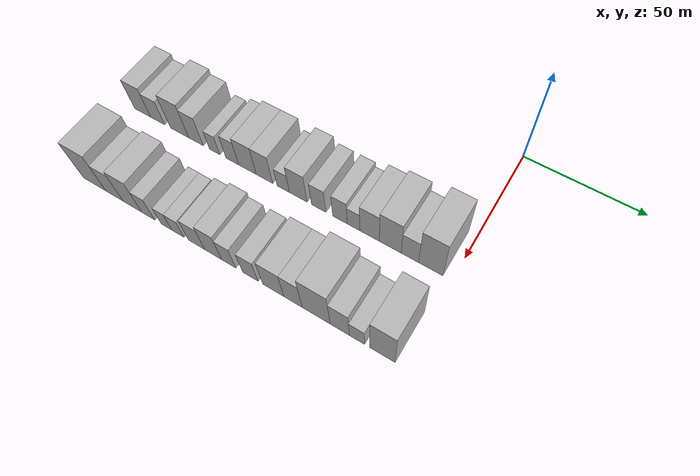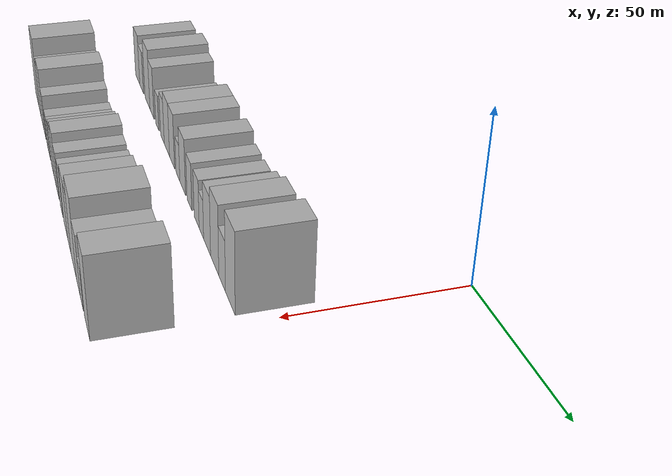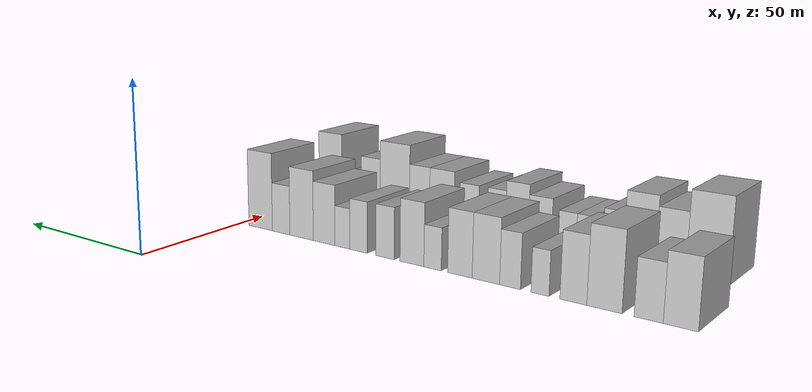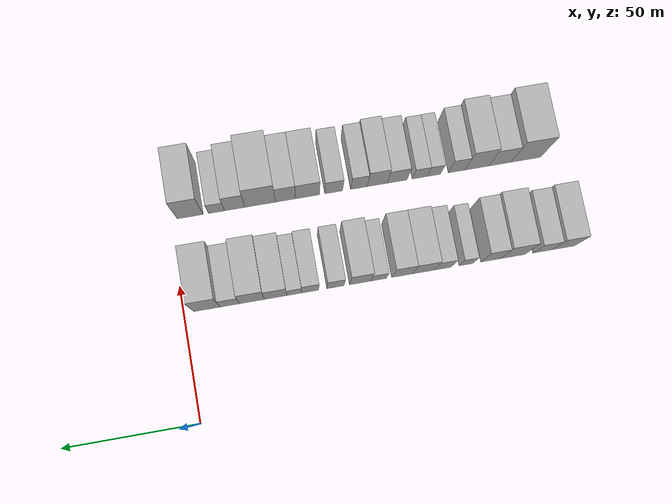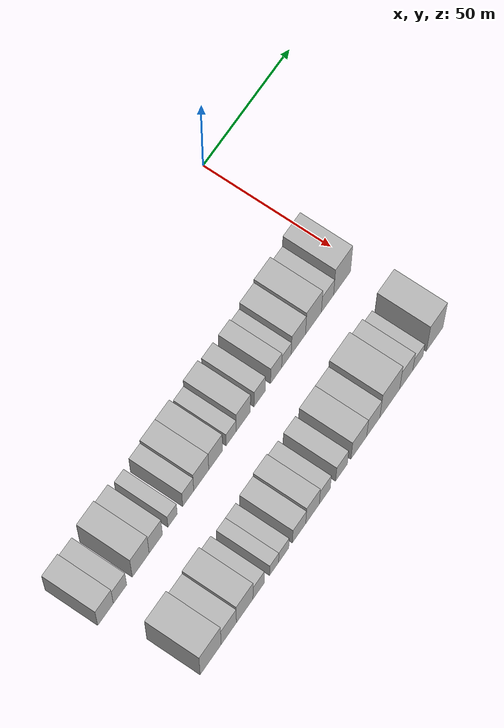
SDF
<sdf version="1.6">
 <world name="default">
  <model name="building_16">
   <static>1</static>
   <pose>50.0000 -140.4494 0 0.000000 0.000000 0.000000</pose>
   <link name="link">
    <pose>0 0 9.00 0 0 0</pose>
    <collision name="collision"><geometry><box><size>20.0000 8.4030 18.0000</size></box></geometry></collision>
    <visual name="visual">
     <cast_shadows>0</cast_shadows>
     <geometry><box><size>20.0000 8.4030 18.0000</size></box></geometry>
     <material>
      <script>
       <uri>model://HANNAS_wall/materials/scripts</uri>
       <uri>model://HANNAS_wall/materials/textures</uri>
       <name>vrc/HANNAS_wall</name>
      </script>
     </material>
    </visual>
   </link>
  </model>
  <model name="building_17">
   <static>1</static>
   <pose>50.0000 -132.6413 0 0.000000 0.000000 0.000000</pose>
   <link name="link">
    <pose>0 0 7.50 0 0 0</pose>
    <collision name="collision"><geometry><box><size>20.0000 7.2131 15.0000</size></box></geometry></collision>
    <visual name="visual">
     <cast_shadows>0</cast_shadows>
     <geometry><box><size>20.0000 7.2131 15.0000</size></box></geometry>
     <material>
      <script>
       <uri>model://HANNAS_wall/materials/scripts</uri>
       <uri>model://HANNAS_wall/materials/textures</uri>
       <name>vrc/HANNAS_wall</name>
      </script>
     </material>
    </visual>
   </link>
  </model>
  <model name="building_18">
   <static>1</static>
   <pose>50.0000 -121.4385 0 0.000000 0.000000 0.000000</pose>
   <link name="link">
    <pose>0 0 10.50 0 0 0</pose>
    <collision name="collision"><geometry><box><size>20.0000 9.1925 21.0000</size></box></geometry></collision>
    <visual name="visual">
     <cast_shadows>0</cast_shadows>
     <geometry><box><size>20.0000 9.1925 21.0000</size></box></geometry>
     <material>
      <script>
       <uri>model://HANNAS_wall/materials/scripts</uri>
       <uri>model://HANNAS_wall/materials/textures</uri>
       <name>vrc/HANNAS_wall</name>
      </script>
     </material>
    </visual>
   </link>
  </model>
  <model name="building_19">
   <static>1</static>
   <pose>50.0000 -113.2091 0 0.000000 0.000000 0.000000</pose>
   <link name="link">
    <pose>0 0 9.00 0 0 0</pose>
    <collision name="collision"><geometry><box><size>20.0000 7.2663 18.0000</size></box></geometry></collision>
    <visual name="visual">
     <cast_shadows>0</cast_shadows>
     <geometry><box><size>20.0000 7.2663 18.0000</size></box></geometry>
     <material>
      <script>
       <uri>model://HANNAS_wall/materials/scripts</uri>
       <uri>model://HANNAS_wall/materials/textures</uri>
       <name>vrc/HANNAS_wall</name>
      </script>
     </material>
    </visual>
   </link>
  </model>
  <model name="building_20">
   <static>1</static>
   <pose>50.0000 -104.0275 0 0.000000 0.000000 0.000000</pose>
   <link name="link">
    <pose>0 0 6.00 0 0 0</pose>
    <collision name="collision"><geometry><box><size>20.0000 5.0969 12.0000</size></box></geometry></collision>
    <visual name="visual">
     <cast_shadows>0</cast_shadows>
     <geometry><box><size>20.0000 5.0969 12.0000</size></box></geometry>
     <material>
      <script>
       <uri>model://HANNAS_wall/materials/scripts</uri>
       <uri>model://HANNAS_wall/materials/textures</uri>
       <name>vrc/HANNAS_wall</name>
      </script>
     </material>
    </visual>
   </link>
  </model>
  <model name="building_21">
   <static>1</static>
   <pose>50.0000 -95.4334 0 0.000000 0.000000 0.000000</pose>
   <link name="link">
    <pose>0 0 7.50 0 0 0</pose>
    <collision name="collision"><geometry><box><size>20.0000 6.0914 15.0000</size></box></geometry></collision>
    <visual name="visual">
     <cast_shadows>0</cast_shadows>
     <geometry><box><size>20.0000 6.0914 15.0000</size></box></geometry>
     <material>
      <script>
       <uri>model://HANNAS_wall/materials/scripts</uri>
       <uri>model://HANNAS_wall/materials/textures</uri>
       <name>vrc/HANNAS_wall</name>
      </script>
     </material>
    </visual>
   </link>
  </model>
  <model name="building_22">
   <static>1</static>
   <pose>50.0000 -88.2341 0 0.000000 0.000000 0.000000</pose>
   <link name="link">
    <pose>0 0 9.00 0 0 0</pose>
    <collision name="collision"><geometry><box><size>20.0000 8.3072 18.0000</size></box></geometry></collision>
    <visual name="visual">
     <cast_shadows>0</cast_shadows>
     <geometry><box><size>20.0000 8.3072 18.0000</size></box></geometry>
     <material>
      <script>
       <uri>model://HANNAS_wall/materials/scripts</uri>
       <uri>model://HANNAS_wall/materials/textures</uri>
       <name>vrc/HANNAS_wall</name>
      </script>
     </material>
    </visual>
   </link>
  </model>
  <model name="building_23">
   <static>1</static>
   <pose>50.0000 -80.2416 0 0.000000 0.000000 0.000000</pose>
   <link name="link">
    <pose>0 0 9.00 0 0 0</pose>
    <collision name="collision"><geometry><box><size>20.0000 7.6779 18.0000</size></box></geometry></collision>
    <visual name="visual">
     <cast_shadows>0</cast_shadows>
     <geometry><box><size>20.0000 7.6779 18.0000</size></box></geometry>
     <material>
      <script>
       <uri>model://HANNAS_wall/materials/scripts</uri>
       <uri>model://HANNAS_wall/materials/textures</uri>
       <name>vrc/HANNAS_wall</name>
      </script>
     </material>
    </visual>
   </link>
  </model>
  <model name="building_24">
   <static>1</static>
   <pose>50.0000 -71.5768 0 0.000000 0.000000 0.000000</pose>
   <link name="link">
    <pose>0 0 6.00 0 0 0</pose>
    <collision name="collision"><geometry><box><size>20.0000 5.6516 12.0000</size></box></geometry></collision>
    <visual name="visual">
     <cast_shadows>0</cast_shadows>
     <geometry><box><size>20.0000 5.6516 12.0000</size></box></geometry>
     <material>
      <script>
       <uri>model://HANNAS_wall/materials/scripts</uri>
       <uri>model://HANNAS_wall/materials/textures</uri>
       <name>vrc/HANNAS_wall</name>
      </script>
     </material>
    </visual>
   </link>
  </model>
  <model name="building_25">
   <static>1</static>
   <pose>50.0000 -64.7696 0 0.000000 0.000000 0.000000</pose>
   <link name="link">
    <pose>0 0 9.00 0 0 0</pose>
    <collision name="collision"><geometry><box><size>20.0000 7.9629 18.0000</size></box></geometry></collision>
    <visual name="visual">
     <cast_shadows>0</cast_shadows>
     <geometry><box><size>20.0000 7.9629 18.0000</size></box></geometry>
     <material>
      <script>
       <uri>model://HANNAS_wall/materials/scripts</uri>
       <uri>model://HANNAS_wall/materials/textures</uri>
       <name>vrc/HANNAS_wall</name>
      </script>
     </material>
    </visual>
   </link>
  </model>
  <model name="building_26">
   <static>1</static>
   <pose>50.0000 -55.6162 0 0.000000 0.000000 0.000000</pose>
   <link name="link">
    <pose>0 0 7.50 0 0 0</pose>
    <collision name="collision"><geometry><box><size>20.0000 6.3438 15.0000</size></box></geometry></collision>
    <visual name="visual">
     <cast_shadows>0</cast_shadows>
     <geometry><box><size>20.0000 6.3438 15.0000</size></box></geometry>
     <material>
      <script>
       <uri>model://HANNAS_wall/materials/scripts</uri>
       <uri>model://HANNAS_wall/materials/textures</uri>
       <name>vrc/HANNAS_wall</name>
      </script>
     </material>
    </visual>
   </link>
  </model>
  <model name="building_27">
   <static>1</static>
   <pose>50.0000 -46.2891 0 0.000000 0.000000 0.000000</pose>
   <link name="link">
    <pose>0 0 7.50 0 0 0</pose>
    <collision name="collision"><geometry><box><size>20.0000 6.3104 15.0000</size></box></geometry></collision>
    <visual name="visual">
     <cast_shadows>0</cast_shadows>
     <geometry><box><size>20.0000 6.3104 15.0000</size></box></geometry>
     <material>
      <script>
       <uri>model://HANNAS_wall/materials/scripts</uri>
       <uri>model://HANNAS_wall/materials/textures</uri>
       <name>vrc/HANNAS_wall</name>
      </script>
     </material>
    </visual>
   </link>
  </model>
  <model name="building_28">
   <static>1</static>
   <pose>50.0000 -40.4163 0 0.000000 0.000000 0.000000</pose>
   <link name="link">
    <pose>0 0 6.00 0 0 0</pose>
    <collision name="collision"><geometry><box><size>20.0000 5.4352 12.0000</size></box></geometry></collision>
    <visual name="visual">
     <cast_shadows>0</cast_shadows>
     <geometry><box><size>20.0000 5.4352 12.0000</size></box></geometry>
     <material>
      <script>
       <uri>model://HANNAS_wall/materials/scripts</uri>
       <uri>model://HANNAS_wall/materials/textures</uri>
       <name>vrc/HANNAS_wall</name>
      </script>
     </material>
    </visual>
   </link>
  </model>
  <model name="building_29">
   <static>1</static>
   <pose>50.0000 -33.6156 0 0.000000 0.000000 0.000000</pose>
   <link name="link">
    <pose>0 0 9.00 0 0 0</pose>
    <collision name="collision"><geometry><box><size>20.0000 8.1662 18.0000</size></box></geometry></collision>
    <visual name="visual">
     <cast_shadows>0</cast_shadows>
     <geometry><box><size>20.0000 8.1662 18.0000</size></box></geometry>
     <material>
      <script>
       <uri>model://HANNAS_wall/materials/scripts</uri>
       <uri>model://HANNAS_wall/materials/textures</uri>
       <name>vrc/HANNAS_wall</name>
      </script>
     </material>
    </visual>
   </link>
  </model>
  <model name="building_30">
   <static>1</static>
   <pose>50.0000 -24.9792 0 0.000000 0.000000 0.000000</pose>
   <link name="link">
    <pose>0 0 10.50 0 0 0</pose>
    <collision name="collision"><geometry><box><size>20.0000 9.1068 21.0000</size></box></geometry></collision>
    <visual name="visual">
     <cast_shadows>0</cast_shadows>
     <geometry><box><size>20.0000 9.1068 21.0000</size></box></geometry>
     <material>
      <script>
       <uri>model://HANNAS_wall/materials/scripts</uri>
       <uri>model://HANNAS_wall/materials/textures</uri>
       <name>vrc/HANNAS_wall</name>
      </script>
     </material>
    </visual>
   </link>
  </model>
  <model name="building_31">
   <static>1</static>
   <pose>50.0000 -16.9064 0 0.000000 0.000000 0.000000</pose>
   <link name="link">
    <pose>0 0 7.50 0 0 0</pose>
    <collision name="collision"><geometry><box><size>20.0000 7.0388 15.0000</size></box></geometry></collision>
    <visual name="visual">
     <cast_shadows>0</cast_shadows>
     <geometry><box><size>20.0000 7.0388 15.0000</size></box></geometry>
     <material>
      <script>
       <uri>model://HANNAS_wall/materials/scripts</uri>
       <uri>model://HANNAS_wall/materials/textures</uri>
       <name>vrc/HANNAS_wall</name>
      </script>
     </material>
    </visual>
   </link>
  </model>
  <model name="building_32">
   <static>1</static>
   <pose>50.0000 -8.5030 0 0.000000 0.000000 0.000000</pose>
   <link name="link">
    <pose>0 0 12.00 0 0 0</pose>
    <collision name="collision"><geometry><box><size>20.0000 9.7680 24.0000</size></box></geometry></collision>
    <visual name="visual">
     <cast_shadows>0</cast_shadows>
     <geometry><box><size>20.0000 9.7680 24.0000</size></box></geometry>
     <material>
      <script>
       <uri>model://HANNAS_wall/materials/scripts</uri>
       <uri>model://HANNAS_wall/materials/textures</uri>
       <name>vrc/HANNAS_wall</name>
      </script>
     </material>
    </visual>
   </link>
  </model>
  <model name="building_83">
   <static>1</static>
   <pose>85.0000 -133.8512 0 0.000000 0.000000 0.000000</pose>
   <link name="link">
    <pose>0 0 12.00 0 0 0</pose>
    <collision name="collision"><geometry><box><size>20.0000 11.3870 24.0000</size></box></geometry></collision>
    <visual name="visual">
     <cast_shadows>0</cast_shadows>
     <geometry><box><size>20.0000 11.3870 24.0000</size></box></geometry>
     <material>
      <script>
       <uri>model://HANNAS_wall/materials/scripts</uri>
       <uri>model://HANNAS_wall/materials/textures</uri>
       <name>vrc/HANNAS_wall</name>
      </script>
     </material>
    </visual>
   </link>
  </model>
  <model name="building_84">
   <static>1</static>
   <pose>85.0000 -123.9764 0 0.000000 0.000000 0.000000</pose>
   <link name="link">
    <pose>0 0 9.00 0 0 0</pose>
    <collision name="collision"><geometry><box><size>20.0000 8.3626 18.0000</size></box></geometry></collision>
    <visual name="visual">
     <cast_shadows>0</cast_shadows>
     <geometry><box><size>20.0000 8.3626 18.0000</size></box></geometry>
     <material>
      <script>
       <uri>model://HANNAS_wall/materials/scripts</uri>
       <uri>model://HANNAS_wall/materials/textures</uri>
       <name>vrc/HANNAS_wall</name>
      </script>
     </material>
    </visual>
   </link>
  </model>
  <model name="building_85">
   <static>1</static>
   <pose>85.0000 -115.2366 0 0.000000 0.000000 0.000000</pose>
   <link name="link">
    <pose>0 0 10.50 0 0 0</pose>
    <collision name="collision"><geometry><box><size>20.0000 9.1172 21.0000</size></box></geometry></collision>
    <visual name="visual">
     <cast_shadows>0</cast_shadows>
     <geometry><box><size>20.0000 9.1172 21.0000</size></box></geometry>
     <material>
      <script>
       <uri>model://HANNAS_wall/materials/scripts</uri>
       <uri>model://HANNAS_wall/materials/textures</uri>
       <name>vrc/HANNAS_wall</name>
      </script>
     </material>
    </visual>
   </link>
  </model>
  <model name="building_86">
   <static>1</static>
   <pose>85.0000 -107.5850 0 0.000000 0.000000 0.000000</pose>
   <link name="link">
    <pose>0 0 7.50 0 0 0</pose>
    <collision name="collision"><geometry><box><size>20.0000 6.1859 15.0000</size></box></geometry></collision>
    <visual name="visual">
     <cast_shadows>0</cast_shadows>
     <geometry><box><size>20.0000 6.1859 15.0000</size></box></geometry>
     <material>
      <script>
       <uri>model://HANNAS_wall/materials/scripts</uri>
       <uri>model://HANNAS_wall/materials/textures</uri>
       <name>vrc/HANNAS_wall</name>
      </script>
     </material>
    </visual>
   </link>
  </model>
  <model name="building_87">
   <static>1</static>
   <pose>85.0000 -98.9969 0 0.000000 0.000000 0.000000</pose>
   <link name="link">
    <pose>0 0 6.00 0 0 0</pose>
    <collision name="collision"><geometry><box><size>20.0000 4.9904 12.0000</size></box></geometry></collision>
    <visual name="visual">
     <cast_shadows>0</cast_shadows>
     <geometry><box><size>20.0000 4.9904 12.0000</size></box></geometry>
     <material>
      <script>
       <uri>model://HANNAS_wall/materials/scripts</uri>
       <uri>model://HANNAS_wall/materials/textures</uri>
       <name>vrc/HANNAS_wall</name>
      </script>
     </material>
    </visual>
   </link>
  </model>
  <model name="building_88">
   <static>1</static>
   <pose>85.0000 -93.6664 0 0.000000 0.000000 0.000000</pose>
   <link name="link">
    <pose>0 0 6.00 0 0 0</pose>
    <collision name="collision"><geometry><box><size>20.0000 5.6708 12.0000</size></box></geometry></collision>
    <visual name="visual">
     <cast_shadows>0</cast_shadows>
     <geometry><box><size>20.0000 5.6708 12.0000</size></box></geometry>
     <material>
      <script>
       <uri>model://HANNAS_wall/materials/scripts</uri>
       <uri>model://HANNAS_wall/materials/textures</uri>
       <name>vrc/HANNAS_wall</name>
      </script>
     </material>
    </visual>
   </link>
  </model>
  <model name="building_89">
   <static>1</static>
   <pose>85.0000 -85.0905 0 0.000000 0.000000 0.000000</pose>
   <link name="link">
    <pose>0 0 7.50 0 0 0</pose>
    <collision name="collision"><geometry><box><size>20.0000 7.4809 15.0000</size></box></geometry></collision>
    <visual name="visual">
     <cast_shadows>0</cast_shadows>
     <geometry><box><size>20.0000 7.4809 15.0000</size></box></geometry>
     <material>
      <script>
       <uri>model://HANNAS_wall/materials/scripts</uri>
       <uri>model://HANNAS_wall/materials/textures</uri>
       <name>vrc/HANNAS_wall</name>
      </script>
     </material>
    </visual>
   </link>
  </model>
  <model name="building_90">
   <static>1</static>
   <pose>85.0000 -77.5555 0 0.000000 0.000000 0.000000</pose>
   <link name="link">
    <pose>0 0 9.00 0 0 0</pose>
    <collision name="collision"><geometry><box><size>20.0000 7.5891 18.0000</size></box></geometry></collision>
    <visual name="visual">
     <cast_shadows>0</cast_shadows>
     <geometry><box><size>20.0000 7.5891 18.0000</size></box></geometry>
     <material>
      <script>
       <uri>model://HANNAS_wall/materials/scripts</uri>
       <uri>model://HANNAS_wall/materials/textures</uri>
       <name>vrc/HANNAS_wall</name>
      </script>
     </material>
    </visual>
   </link>
  </model>
  <model name="building_91">
   <static>1</static>
   <pose>85.0000 -70.6607 0 0.000000 0.000000 0.000000</pose>
   <link name="link">
    <pose>0 0 7.50 0 0 0</pose>
    <collision name="collision"><geometry><box><size>20.0000 6.2005 15.0000</size></box></geometry></collision>
    <visual name="visual">
     <cast_shadows>0</cast_shadows>
     <geometry><box><size>20.0000 6.2005 15.0000</size></box></geometry>
     <material>
      <script>
       <uri>model://HANNAS_wall/materials/scripts</uri>
       <uri>model://HANNAS_wall/materials/textures</uri>
       <name>vrc/HANNAS_wall</name>
      </script>
     </material>
    </visual>
   </link>
  </model>
  <model name="building_92">
   <static>1</static>
   <pose>85.0000 -61.2219 0 0.000000 0.000000 0.000000</pose>
   <link name="link">
    <pose>0 0 7.50 0 0 0</pose>
    <collision name="collision"><geometry><box><size>20.0000 6.6770 15.0000</size></box></geometry></collision>
    <visual name="visual">
     <cast_shadows>0</cast_shadows>
     <geometry><box><size>20.0000 6.6770 15.0000</size></box></geometry>
     <material>
      <script>
       <uri>model://HANNAS_wall/materials/scripts</uri>
       <uri>model://HANNAS_wall/materials/textures</uri>
       <name>vrc/HANNAS_wall</name>
      </script>
     </material>
    </visual>
   </link>
  </model>
  <model name="building_93">
   <static>1</static>
   <pose>85.0000 -51.4000 0 0.000000 0.000000 0.000000</pose>
   <link name="link">
    <pose>0 0 9.00 0 0 0</pose>
    <collision name="collision"><geometry><box><size>20.0000 8.9669 18.0000</size></box></geometry></collision>
    <visual name="visual">
     <cast_shadows>0</cast_shadows>
     <geometry><box><size>20.0000 8.9669 18.0000</size></box></geometry>
     <material>
      <script>
       <uri>model://HANNAS_wall/materials/scripts</uri>
       <uri>model://HANNAS_wall/materials/textures</uri>
       <name>vrc/HANNAS_wall</name>
      </script>
     </material>
    </visual>
   </link>
  </model>
  <model name="building_94">
   <static>1</static>
   <pose>85.0000 -43.1450 0 0.000000 0.000000 0.000000</pose>
   <link name="link">
    <pose>0 0 9.00 0 0 0</pose>
    <collision name="collision"><geometry><box><size>20.0000 7.5430 18.0000</size></box></geometry></collision>
    <visual name="visual">
     <cast_shadows>0</cast_shadows>
     <geometry><box><size>20.0000 7.5430 18.0000</size></box></geometry>
     <material>
      <script>
       <uri>model://HANNAS_wall/materials/scripts</uri>
       <uri>model://HANNAS_wall/materials/textures</uri>
       <name>vrc/HANNAS_wall</name>
      </script>
     </material>
    </visual>
   </link>
  </model>
  <model name="building_95">
   <static>1</static>
   <pose>85.0000 -33.6827 0 0.000000 0.000000 0.000000</pose>
   <link name="link">
    <pose>0 0 12.00 0 0 0</pose>
    <collision name="collision"><geometry><box><size>20.0000 11.3816 24.0000</size></box></geometry></collision>
    <visual name="visual">
     <cast_shadows>0</cast_shadows>
     <geometry><box><size>20.0000 11.3816 24.0000</size></box></geometry>
     <material>
      <script>
       <uri>model://HANNAS_wall/materials/scripts</uri>
       <uri>model://HANNAS_wall/materials/textures</uri>
       <name>vrc/HANNAS_wall</name>
      </script>
     </material>
    </visual>
   </link>
  </model>
  <model name="building_96">
   <static>1</static>
   <pose>85.0000 -24.1817 0 0.000000 0.000000 0.000000</pose>
   <link name="link">
    <pose>0 0 9.00 0 0 0</pose>
    <collision name="collision"><geometry><box><size>20.0000 7.6204 18.0000</size></box></geometry></collision>
    <visual name="visual">
     <cast_shadows>0</cast_shadows>
     <geometry><box><size>20.0000 7.6204 18.0000</size></box></geometry>
     <material>
      <script>
       <uri>model://HANNAS_wall/materials/scripts</uri>
       <uri>model://HANNAS_wall/materials/textures</uri>
       <name>vrc/HANNAS_wall</name>
      </script>
     </material>
    </visual>
   </link>
  </model>
  <model name="building_97">
   <static>1</static>
   <pose>85.0000 -17.3939 0 0.000000 0.000000 0.000000</pose>
   <link name="link">
    <pose>0 0 6.00 0 0 0</pose>
    <collision name="collision"><geometry><box><size>20.0000 5.9552 12.0000</size></box></geometry></collision>
    <visual name="visual">
     <cast_shadows>0</cast_shadows>
     <geometry><box><size>20.0000 5.9552 12.0000</size></box></geometry>
     <material>
      <script>
       <uri>model://HANNAS_wall/materials/scripts</uri>
       <uri>model://HANNAS_wall/materials/textures</uri>
       <name>vrc/HANNAS_wall</name>
      </script>
     </material>
    </visual>
   </link>
  </model>
  <model name="building_98">
   <static>1</static>
   <pose>85.0000 -7.5739 0 0.000000 0.000000 0.000000</pose>
   <link name="link">
    <pose>0 0 12.00 0 0 0</pose>
    <collision name="collision"><geometry><box><size>20.0000 9.6848 24.0000</size></box></geometry></collision>
    <visual name="visual">
     <cast_shadows>0</cast_shadows>
     <geometry><box><size>20.0000 9.6848 24.0000</size></box></geometry>
     <material>
      <script>
       <uri>model://HANNAS_wall/materials/scripts</uri>
       <uri>model://HANNAS_wall/materials/textures</uri>
       <name>vrc/HANNAS_wall</name>
      </script>
     </material>
    </visual>
   </link>
  </model>
 </world>
</sdf>
